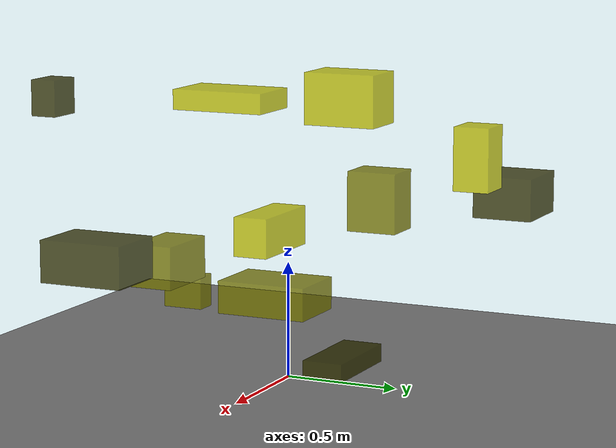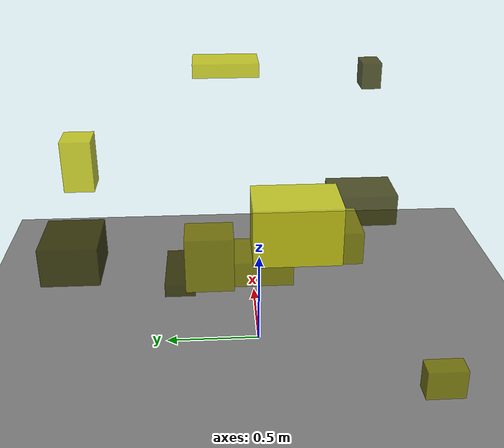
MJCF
<?xml version="1.0"?>
<mujoco model="obstacle_scene">
  <compiler angle="radian" coordinate="local"/>
  <option timestep="0.001" gravity="0 0 -9.81"/>

  <asset>
    <material name="obstacle_mat" rgba="0.8 0.8 0.0 0.8"/>
    <material name="ground_mat" rgba="0.5 0.5 0.5 1"/>
  </asset>

  <worldbody>
    <!-- Ground plane -->
    <geom name="ground" type="plane" size="3 3 0.1" material="ground_mat"/>

    <!-- Obstacles -->
    <body name="obstacle_0" pos="0.765102 -0.681098 1.261254">
      <geom name="obs_0" type="box" size="0.076169 0.053705 0.073135" rgba="0.2 0.2 0.0 0.8"/>
    </body>
    <body name="obstacle_1" pos="0.153176 0.011527 0.390014">
      <geom name="obs_1" type="box" size="0.141880 0.196109 0.069104" rgba="0.5 0.5 0.0 0.8"/>
    </body>
    <body name="obstacle_2" pos="0.816210 0.143287 1.302372">
      <geom name="obs_2" type="box" size="0.117077 0.186051 0.039148" rgba="0.8 0.8 0.0 0.8"/>
    </body>
    <body name="obstacle_3" pos="0.387245 0.428288 0.200017">
      <geom name="obs_3" type="box" size="0.201130 0.084525 0.036863" rgba="0.2 0.2 0.0 0.8"/>
    </body>
    <body name="obstacle_4" pos="-0.645850 -0.829846 0.182594">
      <geom name="obs_4" type="box" size="0.052634 0.095746 0.076111" rgba="0.5 0.5 0.0 0.8"/>
    </body>
    <body name="obstacle_5" pos="0.023993 -0.073598 0.636177">
      <geom name="obs_5" type="box" size="0.193282 0.075066 0.083880" rgba="0.8 0.8 0.0 0.8"/>
    </body>
    <body name="obstacle_6" pos="-0.421604 0.858642 0.793454">
      <geom name="obs_6" type="box" size="0.146120 0.128111 0.088760" rgba="0.2 0.2 0.0 0.8"/>
    </body>
    <body name="obstacle_7" pos="0.209182 -0.465889 0.504797">
      <geom name="obs_7" type="box" size="0.156693 0.093679 0.091198" rgba="0.5 0.5 0.0 0.8"/>
    </body>
    <body name="obstacle_8" pos="-0.831511 -0.089191 1.107001">
      <geom name="obs_8" type="box" size="0.118072 0.171100 0.119801" rgba="0.8 0.8 0.0 0.8"/>
    </body>
    <body name="obstacle_9" pos="0.535710 -0.626041 0.557483">
      <geom name="obs_9" type="box" size="0.140641 0.187079 0.090011" rgba="0.2 0.2 0.0 0.8"/>
    </body>
    <body name="obstacle_10" pos="-0.387231 0.253294 0.728478">
      <geom name="obs_10" type="box" size="0.089737 0.111190 0.131335" rgba="0.5 0.5 0.0 0.8"/>
    </body>
    <body name="obstacle_11" pos="0.094523 0.888408 1.021550">
      <geom name="obs_11" type="box" size="0.078686 0.074650 0.130119" rgba="0.8 0.8 0.0 0.8"/>
    </body>
  </worldbody>
</mujoco>
